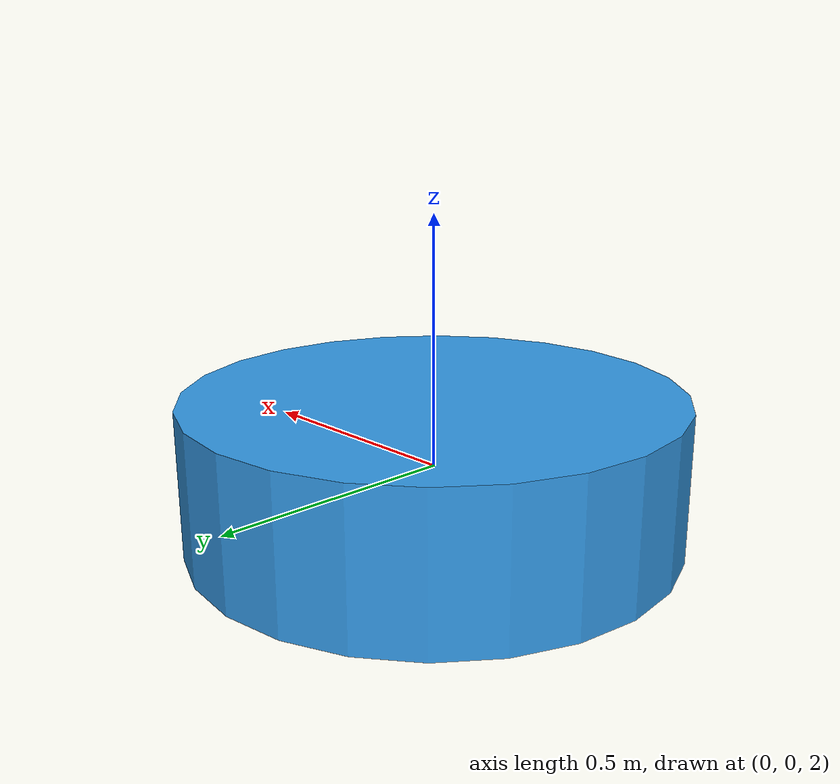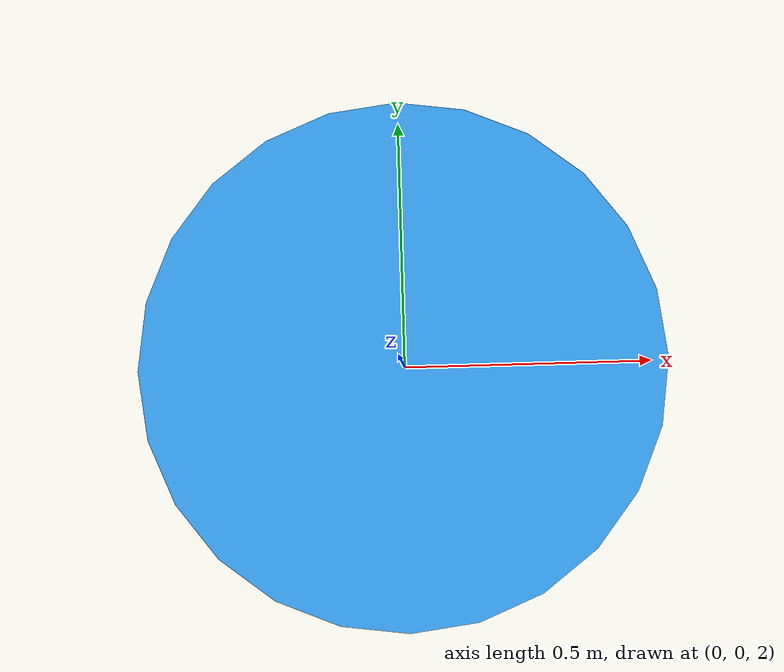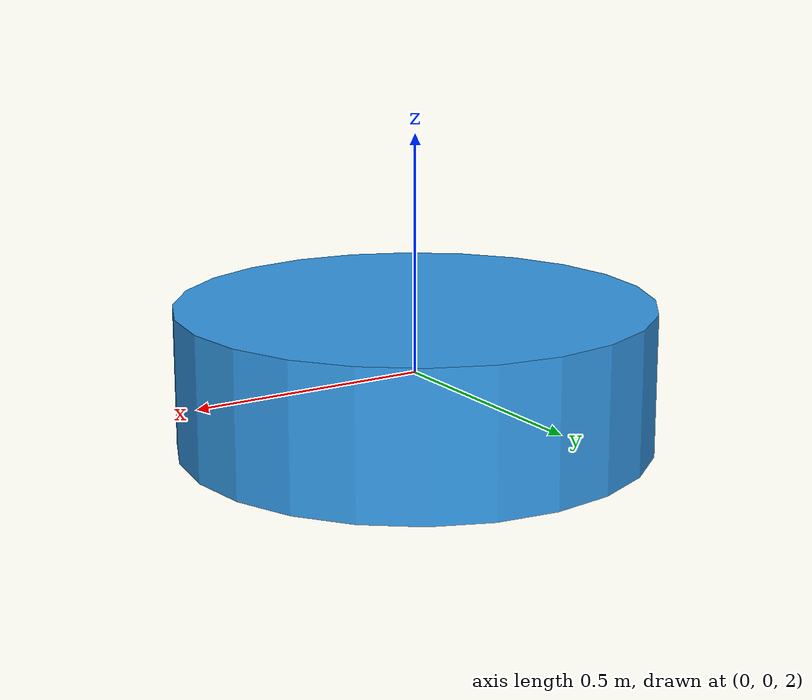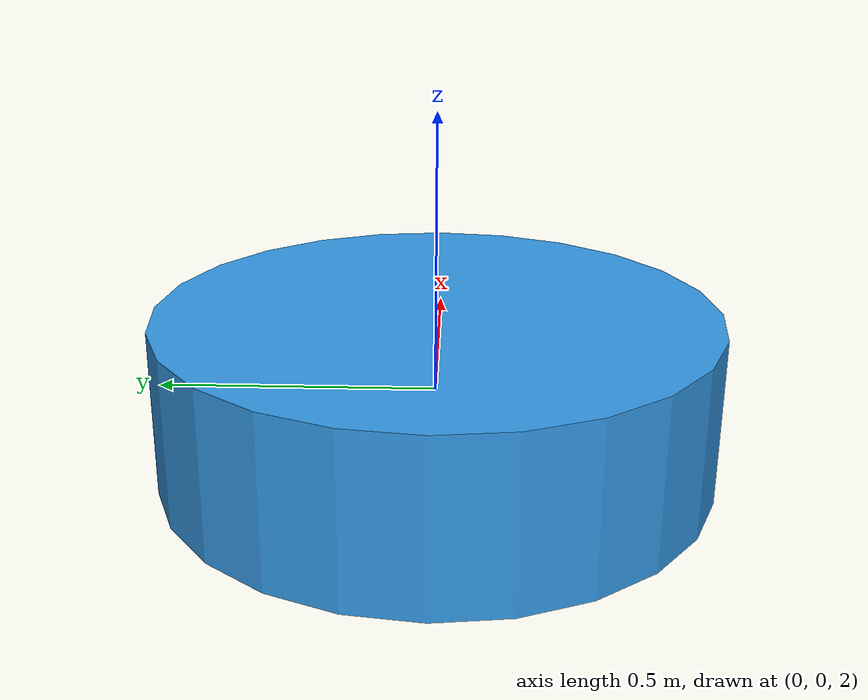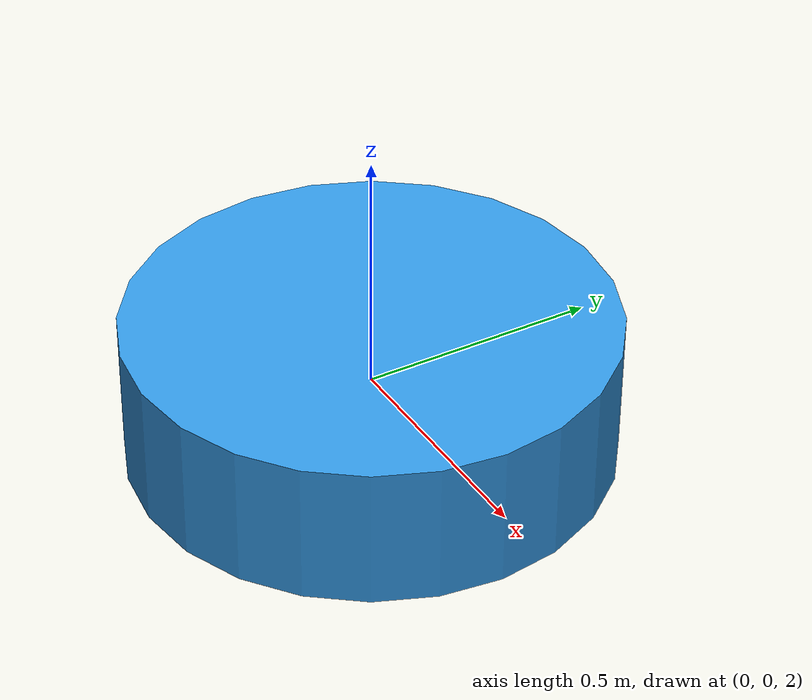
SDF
<?xml version="1.0"?>
<sdf version="1.6">
  <model name="central_cylinder">
    <pose>0 0 2 0 0 0</pose> <!-- Half height (0.15m) above ground -->

    <link name="link">
      <inertial>
        <mass>1000.0</mass>
        <inertia>
          <!-- For solid cylinder:
               Ixx = Iyy = (1/12)*m*(3r² + h²)
               Izz = (1/2)*m*r² -->
          <ixx>0.1292</ixx>
          <iyy>0.1292</iyy>
          <izz>0.25</izz>
        </inertia>
      </inertial>

      <collision name="collision">
        <geometry>
          <cylinder>
            <radius>0.5</radius>
            <length>0.3</length>
          </cylinder>
        </geometry>
        <laser_retro>300</laser_retro>
      </collision>

      <visual name="visual">
        <geometry>
          <cylinder>
            <radius>0.5</radius>
            <length>0.3</length>
          </cylinder>
        </geometry>
        <material>
          <ambient>0.2 0.6 0.9 1</ambient>
          <diffuse>0.2 0.6 0.9 1</diffuse>
        </material>
        <laser_retro>300</laser_retro>
      </visual>
    </link>
  </model>
</sdf>
